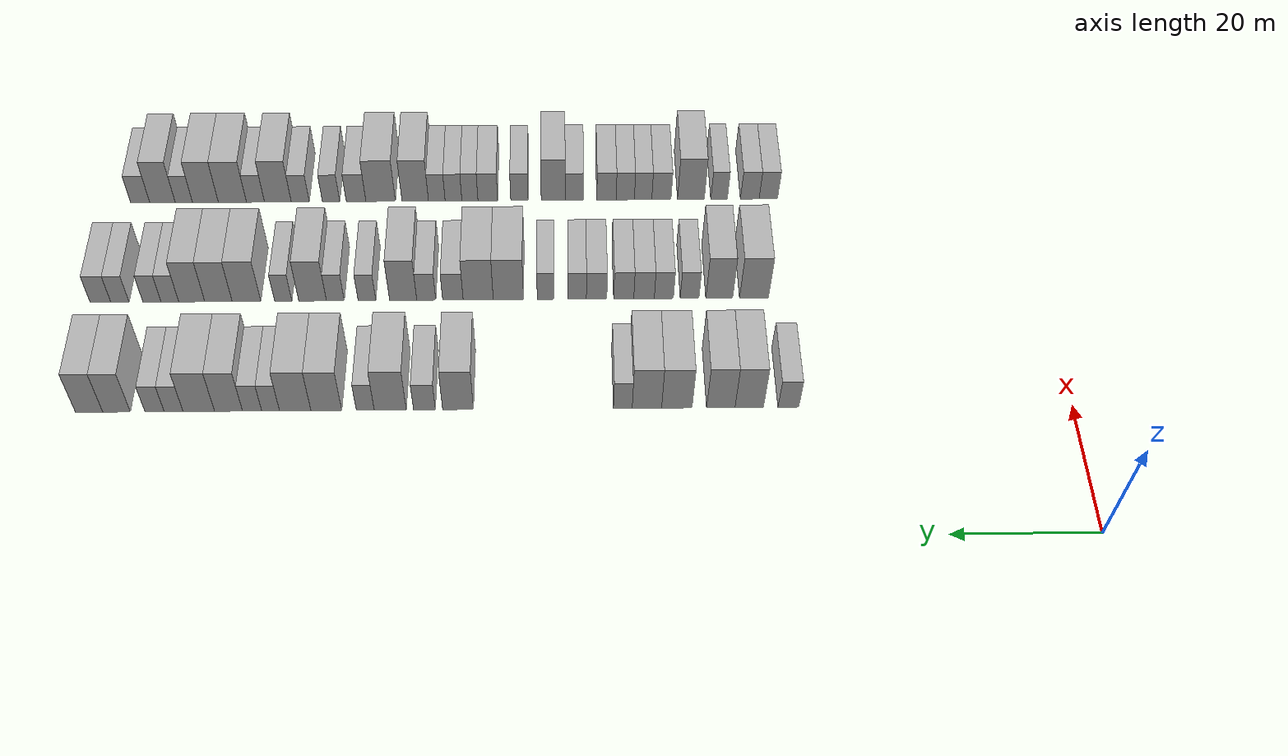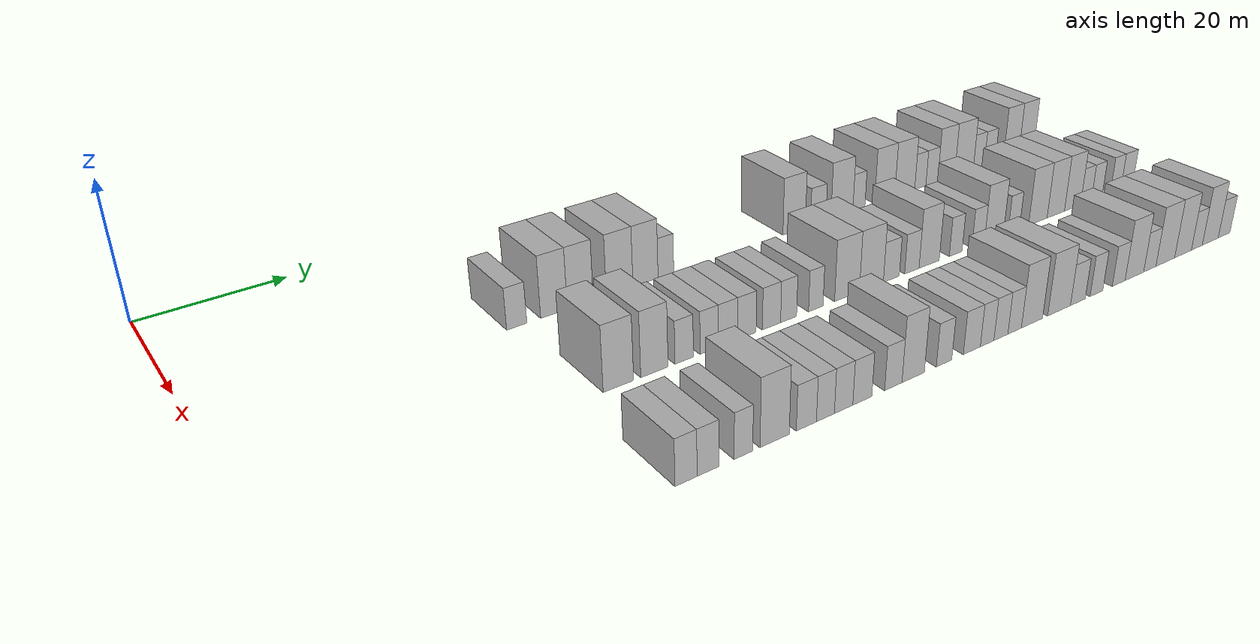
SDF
<sdf version="1.6">
 <world name="default">
  <model name="building_75">
   <static>1</static>
   <pose>25.0000 39.0968 0 0.000000 0.000000 0.000000</pose>
   <link name="link">
    <pose>0 0 3.00 0 0 0</pose>
    <collision name="collision"><geometry><box><size>10.0000 2.8547 6.0000</size></box></geometry></collision>
    <visual name="visual">
     <cast_shadows>0</cast_shadows>
     <geometry><box><size>10.0000 2.8547 6.0000</size></box></geometry>
     <material>
      <script>
       <uri>model://HANNAS_wall/materials/scripts</uri>
       <uri>model://HANNAS_wall/materials/textures</uri>
       <name>vrc/HANNAS_wall</name>
      </script>
     </material>
    </visual>
   </link>
  </model>
  <model name="building_76">
   <static>1</static>
   <pose>25.0000 44.4798 0 0.000000 0.000000 0.000000</pose>
   <link name="link">
    <pose>0 0 4.50 0 0 0</pose>
    <collision name="collision"><geometry><box><size>10.0000 3.9114 9.0000</size></box></geometry></collision>
    <visual name="visual">
     <cast_shadows>0</cast_shadows>
     <geometry><box><size>10.0000 3.9114 9.0000</size></box></geometry>
     <material>
      <script>
       <uri>model://HANNAS_wall/materials/scripts</uri>
       <uri>model://HANNAS_wall/materials/textures</uri>
       <name>vrc/HANNAS_wall</name>
      </script>
     </material>
    </visual>
   </link>
  </model>
  <model name="building_77">
   <static>1</static>
   <pose>25.0000 48.3891 0 0.000000 0.000000 0.000000</pose>
   <link name="link">
    <pose>0 0 4.50 0 0 0</pose>
    <collision name="collision"><geometry><box><size>10.0000 3.9073 9.0000</size></box></geometry></collision>
    <visual name="visual">
     <cast_shadows>0</cast_shadows>
     <geometry><box><size>10.0000 3.9073 9.0000</size></box></geometry>
     <material>
      <script>
       <uri>model://HANNAS_wall/materials/scripts</uri>
       <uri>model://HANNAS_wall/materials/textures</uri>
       <name>vrc/HANNAS_wall</name>
      </script>
     </material>
    </visual>
   </link>
  </model>
  <model name="building_78">
   <static>1</static>
   <pose>25.0000 54.4332 0 0.000000 0.000000 0.000000</pose>
   <link name="link">
    <pose>0 0 4.50 0 0 0</pose>
    <collision name="collision"><geometry><box><size>10.0000 4.1808 9.0000</size></box></geometry></collision>
    <visual name="visual">
     <cast_shadows>0</cast_shadows>
     <geometry><box><size>10.0000 4.1808 9.0000</size></box></geometry>
     <material>
      <script>
       <uri>model://HANNAS_wall/materials/scripts</uri>
       <uri>model://HANNAS_wall/materials/textures</uri>
       <name>vrc/HANNAS_wall</name>
      </script>
     </material>
    </visual>
   </link>
  </model>
  <model name="building_79">
   <static>1</static>
   <pose>25.0000 58.5449 0 0.000000 0.000000 0.000000</pose>
   <link name="link">
    <pose>0 0 4.50 0 0 0</pose>
    <collision name="collision"><geometry><box><size>10.0000 4.0427 9.0000</size></box></geometry></collision>
    <visual name="visual">
     <cast_shadows>0</cast_shadows>
     <geometry><box><size>10.0000 4.0427 9.0000</size></box></geometry>
     <material>
      <script>
       <uri>model://HANNAS_wall/materials/scripts</uri>
       <uri>model://HANNAS_wall/materials/textures</uri>
       <name>vrc/HANNAS_wall</name>
      </script>
     </material>
    </visual>
   </link>
  </model>
  <model name="building_80">
   <static>1</static>
   <pose>25.0000 61.8538 0 0.000000 0.000000 0.000000</pose>
   <link name="link">
    <pose>0 0 3.00 0 0 0</pose>
    <collision name="collision"><geometry><box><size>10.0000 2.5751 6.0000</size></box></geometry></collision>
    <visual name="visual">
     <cast_shadows>0</cast_shadows>
     <geometry><box><size>10.0000 2.5751 6.0000</size></box></geometry>
     <material>
      <script>
       <uri>model://HANNAS_wall/materials/scripts</uri>
       <uri>model://HANNAS_wall/materials/textures</uri>
       <name>vrc/HANNAS_wall</name>
      </script>
     </material>
    </visual>
   </link>
  </model>
  <model name="building_81">
   <static>1</static>
   <pose>25.0000 84.4778 0 0.000000 0.000000 0.000000</pose>
   <link name="link">
    <pose>0 0 4.50 0 0 0</pose>
    <collision name="collision"><geometry><box><size>10.0000 4.2243 9.0000</size></box></geometry></collision>
    <visual name="visual">
     <cast_shadows>0</cast_shadows>
     <geometry><box><size>10.0000 4.2243 9.0000</size></box></geometry>
     <material>
      <script>
       <uri>model://HANNAS_wall/materials/scripts</uri>
       <uri>model://HANNAS_wall/materials/textures</uri>
       <name>vrc/HANNAS_wall</name>
      </script>
     </material>
    </visual>
   </link>
  </model>
  <model name="building_82">
   <static>1</static>
   <pose>25.0000 89.0823 0 0.000000 0.000000 0.000000</pose>
   <link name="link">
    <pose>0 0 3.00 0 0 0</pose>
    <collision name="collision"><geometry><box><size>10.0000 2.9847 6.0000</size></box></geometry></collision>
    <visual name="visual">
     <cast_shadows>0</cast_shadows>
     <geometry><box><size>10.0000 2.9847 6.0000</size></box></geometry>
     <material>
      <script>
       <uri>model://HANNAS_wall/materials/scripts</uri>
       <uri>model://HANNAS_wall/materials/textures</uri>
       <name>vrc/HANNAS_wall</name>
      </script>
     </material>
    </visual>
   </link>
  </model>
  <model name="building_83">
   <static>1</static>
   <pose>25.0000 93.7725 0 0.000000 0.000000 0.000000</pose>
   <link name="link">
    <pose>0 0 4.50 0 0 0</pose>
    <collision name="collision"><geometry><box><size>10.0000 4.3955 9.0000</size></box></geometry></collision>
    <visual name="visual">
     <cast_shadows>0</cast_shadows>
     <geometry><box><size>10.0000 4.3955 9.0000</size></box></geometry>
     <material>
      <script>
       <uri>model://HANNAS_wall/materials/scripts</uri>
       <uri>model://HANNAS_wall/materials/textures</uri>
       <name>vrc/HANNAS_wall</name>
      </script>
     </material>
    </visual>
   </link>
  </model>
  <model name="building_84">
   <static>1</static>
   <pose>25.0000 97.1975 0 0.000000 0.000000 0.000000</pose>
   <link name="link">
    <pose>0 0 3.00 0 0 0</pose>
    <collision name="collision"><geometry><box><size>10.0000 2.4546 6.0000</size></box></geometry></collision>
    <visual name="visual">
     <cast_shadows>0</cast_shadows>
     <geometry><box><size>10.0000 2.4546 6.0000</size></box></geometry>
     <material>
      <script>
       <uri>model://HANNAS_wall/materials/scripts</uri>
       <uri>model://HANNAS_wall/materials/textures</uri>
       <name>vrc/HANNAS_wall</name>
      </script>
     </material>
    </visual>
   </link>
  </model>
  <model name="building_85">
   <static>1</static>
   <pose>25.0000 102.5396 0 0.000000 0.000000 0.000000</pose>
   <link name="link">
    <pose>0 0 4.50 0 0 0</pose>
    <collision name="collision"><geometry><box><size>10.0000 4.2296 9.0000</size></box></geometry></collision>
    <visual name="visual">
     <cast_shadows>0</cast_shadows>
     <geometry><box><size>10.0000 4.2296 9.0000</size></box></geometry>
     <material>
      <script>
       <uri>model://HANNAS_wall/materials/scripts</uri>
       <uri>model://HANNAS_wall/materials/textures</uri>
       <name>vrc/HANNAS_wall</name>
      </script>
     </material>
    </visual>
   </link>
  </model>
  <model name="building_86">
   <static>1</static>
   <pose>25.0000 106.8066 0 0.000000 0.000000 0.000000</pose>
   <link name="link">
    <pose>0 0 4.50 0 0 0</pose>
    <collision name="collision"><geometry><box><size>10.0000 4.3044 9.0000</size></box></geometry></collision>
    <visual name="visual">
     <cast_shadows>0</cast_shadows>
     <geometry><box><size>10.0000 4.3044 9.0000</size></box></geometry>
     <material>
      <script>
       <uri>model://HANNAS_wall/materials/scripts</uri>
       <uri>model://HANNAS_wall/materials/textures</uri>
       <name>vrc/HANNAS_wall</name>
      </script>
     </material>
    </visual>
   </link>
  </model>
  <model name="building_87">
   <static>1</static>
   <pose>25.0000 110.1790 0 0.000000 0.000000 0.000000</pose>
   <link name="link">
    <pose>0 0 3.00 0 0 0</pose>
    <collision name="collision"><geometry><box><size>10.0000 2.4404 6.0000</size></box></geometry></collision>
    <visual name="visual">
     <cast_shadows>0</cast_shadows>
     <geometry><box><size>10.0000 2.4404 6.0000</size></box></geometry>
     <material>
      <script>
       <uri>model://HANNAS_wall/materials/scripts</uri>
       <uri>model://HANNAS_wall/materials/textures</uri>
       <name>vrc/HANNAS_wall</name>
      </script>
     </material>
    </visual>
   </link>
  </model>
  <model name="building_88">
   <static>1</static>
   <pose>25.0000 112.7110 0 0.000000 0.000000 0.000000</pose>
   <link name="link">
    <pose>0 0 3.00 0 0 0</pose>
    <collision name="collision"><geometry><box><size>10.0000 2.6236 6.0000</size></box></geometry></collision>
    <visual name="visual">
     <cast_shadows>0</cast_shadows>
     <geometry><box><size>10.0000 2.6236 6.0000</size></box></geometry>
     <material>
      <script>
       <uri>model://HANNAS_wall/materials/scripts</uri>
       <uri>model://HANNAS_wall/materials/textures</uri>
       <name>vrc/HANNAS_wall</name>
      </script>
     </material>
    </visual>
   </link>
  </model>
  <model name="building_89">
   <static>1</static>
   <pose>25.0000 115.9426 0 0.000000 0.000000 0.000000</pose>
   <link name="link">
    <pose>0 0 4.50 0 0 0</pose>
    <collision name="collision"><geometry><box><size>10.0000 3.8397 9.0000</size></box></geometry></collision>
    <visual name="visual">
     <cast_shadows>0</cast_shadows>
     <geometry><box><size>10.0000 3.8397 9.0000</size></box></geometry>
     <material>
      <script>
       <uri>model://HANNAS_wall/materials/scripts</uri>
       <uri>model://HANNAS_wall/materials/textures</uri>
       <name>vrc/HANNAS_wall</name>
      </script>
     </material>
    </visual>
   </link>
  </model>
  <model name="building_90">
   <static>1</static>
   <pose>25.0000 120.0203 0 0.000000 0.000000 0.000000</pose>
   <link name="link">
    <pose>0 0 4.50 0 0 0</pose>
    <collision name="collision"><geometry><box><size>10.0000 4.3157 9.0000</size></box></geometry></collision>
    <visual name="visual">
     <cast_shadows>0</cast_shadows>
     <geometry><box><size>10.0000 4.3157 9.0000</size></box></geometry>
     <material>
      <script>
       <uri>model://HANNAS_wall/materials/scripts</uri>
       <uri>model://HANNAS_wall/materials/textures</uri>
       <name>vrc/HANNAS_wall</name>
      </script>
     </material>
    </visual>
   </link>
  </model>
  <model name="building_91">
   <static>1</static>
   <pose>25.0000 123.4701 0 0.000000 0.000000 0.000000</pose>
   <link name="link">
    <pose>0 0 3.00 0 0 0</pose>
    <collision name="collision"><geometry><box><size>10.0000 2.5840 6.0000</size></box></geometry></collision>
    <visual name="visual">
     <cast_shadows>0</cast_shadows>
     <geometry><box><size>10.0000 2.5840 6.0000</size></box></geometry>
     <material>
      <script>
       <uri>model://HANNAS_wall/materials/scripts</uri>
       <uri>model://HANNAS_wall/materials/textures</uri>
       <name>vrc/HANNAS_wall</name>
      </script>
     </material>
    </visual>
   </link>
  </model>
  <model name="building_92">
   <static>1</static>
   <pose>25.0000 126.0767 0 0.000000 0.000000 0.000000</pose>
   <link name="link">
    <pose>0 0 3.00 0 0 0</pose>
    <collision name="collision"><geometry><box><size>10.0000 2.6291 6.0000</size></box></geometry></collision>
    <visual name="visual">
     <cast_shadows>0</cast_shadows>
     <geometry><box><size>10.0000 2.6291 6.0000</size></box></geometry>
     <material>
      <script>
       <uri>model://HANNAS_wall/materials/scripts</uri>
       <uri>model://HANNAS_wall/materials/textures</uri>
       <name>vrc/HANNAS_wall</name>
      </script>
     </material>
    </visual>
   </link>
  </model>
  <model name="building_93">
   <static>1</static>
   <pose>25.0000 131.2825 0 0.000000 0.000000 0.000000</pose>
   <link name="link">
    <pose>0 0 4.50 0 0 0</pose>
    <collision name="collision"><geometry><box><size>10.0000 3.7823 9.0000</size></box></geometry></collision>
    <visual name="visual">
     <cast_shadows>0</cast_shadows>
     <geometry><box><size>10.0000 3.7823 9.0000</size></box></geometry>
     <material>
      <script>
       <uri>model://HANNAS_wall/materials/scripts</uri>
       <uri>model://HANNAS_wall/materials/textures</uri>
       <name>vrc/HANNAS_wall</name>
      </script>
     </material>
    </visual>
   </link>
  </model>
  <model name="building_94">
   <static>1</static>
   <pose>25.0000 135.0391 0 0.000000 0.000000 0.000000</pose>
   <link name="link">
    <pose>0 0 4.50 0 0 0</pose>
    <collision name="collision"><geometry><box><size>10.0000 3.7309 9.0000</size></box></geometry></collision>
    <visual name="visual">
     <cast_shadows>0</cast_shadows>
     <geometry><box><size>10.0000 3.7309 9.0000</size></box></geometry>
     <material>
      <script>
       <uri>model://HANNAS_wall/materials/scripts</uri>
       <uri>model://HANNAS_wall/materials/textures</uri>
       <name>vrc/HANNAS_wall</name>
      </script>
     </material>
    </visual>
   </link>
  </model>
  <model name="building_192">
   <static>1</static>
   <pose>44.0000 42.3179 0 0.000000 0.000000 0.000000</pose>
   <link name="link">
    <pose>0 0 4.50 0 0 0</pose>
    <collision name="collision"><geometry><box><size>10.0000 4.1837 9.0000</size></box></geometry></collision>
    <visual name="visual">
     <cast_shadows>0</cast_shadows>
     <geometry><box><size>10.0000 4.1837 9.0000</size></box></geometry>
     <material>
      <script>
       <uri>model://HANNAS_wall/materials/scripts</uri>
       <uri>model://HANNAS_wall/materials/textures</uri>
       <name>vrc/HANNAS_wall</name>
      </script>
     </material>
    </visual>
   </link>
  </model>
  <model name="building_193">
   <static>1</static>
   <pose>44.0000 47.3518 0 0.000000 0.000000 0.000000</pose>
   <link name="link">
    <pose>0 0 4.50 0 0 0</pose>
    <collision name="collision"><geometry><box><size>10.0000 3.8842 9.0000</size></box></geometry></collision>
    <visual name="visual">
     <cast_shadows>0</cast_shadows>
     <geometry><box><size>10.0000 3.8842 9.0000</size></box></geometry>
     <material>
      <script>
       <uri>model://HANNAS_wall/materials/scripts</uri>
       <uri>model://HANNAS_wall/materials/textures</uri>
       <name>vrc/HANNAS_wall</name>
      </script>
     </material>
    </visual>
   </link>
  </model>
  <model name="building_194">
   <static>1</static>
   <pose>44.0000 51.6455 0 0.000000 0.000000 0.000000</pose>
   <link name="link">
    <pose>0 0 3.00 0 0 0</pose>
    <collision name="collision"><geometry><box><size>10.0000 2.7030 6.0000</size></box></geometry></collision>
    <visual name="visual">
     <cast_shadows>0</cast_shadows>
     <geometry><box><size>10.0000 2.7030 6.0000</size></box></geometry>
     <material>
      <script>
       <uri>model://HANNAS_wall/materials/scripts</uri>
       <uri>model://HANNAS_wall/materials/textures</uri>
       <name>vrc/HANNAS_wall</name>
      </script>
     </material>
    </visual>
   </link>
  </model>
  <model name="building_195">
   <static>1</static>
   <pose>44.0000 55.3743 0 0.000000 0.000000 0.000000</pose>
   <link name="link">
    <pose>0 0 3.00 0 0 0</pose>
    <collision name="collision"><geometry><box><size>10.0000 2.7546 6.0000</size></box></geometry></collision>
    <visual name="visual">
     <cast_shadows>0</cast_shadows>
     <geometry><box><size>10.0000 2.7546 6.0000</size></box></geometry>
     <material>
      <script>
       <uri>model://HANNAS_wall/materials/scripts</uri>
       <uri>model://HANNAS_wall/materials/textures</uri>
       <name>vrc/HANNAS_wall</name>
      </script>
     </material>
    </visual>
   </link>
  </model>
  <model name="building_196">
   <static>1</static>
   <pose>44.0000 58.2338 0 0.000000 0.000000 0.000000</pose>
   <link name="link">
    <pose>0 0 3.00 0 0 0</pose>
    <collision name="collision"><geometry><box><size>10.0000 2.9645 6.0000</size></box></geometry></collision>
    <visual name="visual">
     <cast_shadows>0</cast_shadows>
     <geometry><box><size>10.0000 2.9645 6.0000</size></box></geometry>
     <material>
      <script>
       <uri>model://HANNAS_wall/materials/scripts</uri>
       <uri>model://HANNAS_wall/materials/textures</uri>
       <name>vrc/HANNAS_wall</name>
      </script>
     </material>
    </visual>
   </link>
  </model>
  <model name="building_197">
   <static>1</static>
   <pose>44.0000 61.1709 0 0.000000 0.000000 0.000000</pose>
   <link name="link">
    <pose>0 0 3.00 0 0 0</pose>
    <collision name="collision"><geometry><box><size>10.0000 2.9097 6.0000</size></box></geometry></collision>
    <visual name="visual">
     <cast_shadows>0</cast_shadows>
     <geometry><box><size>10.0000 2.9097 6.0000</size></box></geometry>
     <material>
      <script>
       <uri>model://HANNAS_wall/materials/scripts</uri>
       <uri>model://HANNAS_wall/materials/textures</uri>
       <name>vrc/HANNAS_wall</name>
      </script>
     </material>
    </visual>
   </link>
  </model>
  <model name="building_198">
   <static>1</static>
   <pose>44.0000 65.1029 0 0.000000 0.000000 0.000000</pose>
   <link name="link">
    <pose>0 0 3.00 0 0 0</pose>
    <collision name="collision"><geometry><box><size>10.0000 2.9542 6.0000</size></box></geometry></collision>
    <visual name="visual">
     <cast_shadows>0</cast_shadows>
     <geometry><box><size>10.0000 2.9542 6.0000</size></box></geometry>
     <material>
      <script>
       <uri>model://HANNAS_wall/materials/scripts</uri>
       <uri>model://HANNAS_wall/materials/textures</uri>
       <name>vrc/HANNAS_wall</name>
      </script>
     </material>
    </visual>
   </link>
  </model>
  <model name="building_199">
   <static>1</static>
   <pose>44.0000 67.8954 0 0.000000 0.000000 0.000000</pose>
   <link name="link">
    <pose>0 0 3.00 0 0 0</pose>
    <collision name="collision"><geometry><box><size>10.0000 2.6307 6.0000</size></box></geometry></collision>
    <visual name="visual">
     <cast_shadows>0</cast_shadows>
     <geometry><box><size>10.0000 2.6307 6.0000</size></box></geometry>
     <material>
      <script>
       <uri>model://HANNAS_wall/materials/scripts</uri>
       <uri>model://HANNAS_wall/materials/textures</uri>
       <name>vrc/HANNAS_wall</name>
      </script>
     </material>
    </visual>
   </link>
  </model>
  <model name="building_200">
   <static>1</static>
   <pose>44.0000 72.4391 0 0.000000 0.000000 0.000000</pose>
   <link name="link">
    <pose>0 0 3.00 0 0 0</pose>
    <collision name="collision"><geometry><box><size>10.0000 2.4569 6.0000</size></box></geometry></collision>
    <visual name="visual">
     <cast_shadows>0</cast_shadows>
     <geometry><box><size>10.0000 2.4569 6.0000</size></box></geometry>
     <material>
      <script>
       <uri>model://HANNAS_wall/materials/scripts</uri>
       <uri>model://HANNAS_wall/materials/textures</uri>
       <name>vrc/HANNAS_wall</name>
      </script>
     </material>
    </visual>
   </link>
  </model>
  <model name="building_201">
   <static>1</static>
   <pose>44.0000 77.8555 0 0.000000 0.000000 0.000000</pose>
   <link name="link">
    <pose>0 0 4.50 0 0 0</pose>
    <collision name="collision"><geometry><box><size>10.0000 4.3758 9.0000</size></box></geometry></collision>
    <visual name="visual">
     <cast_shadows>0</cast_shadows>
     <geometry><box><size>10.0000 4.3758 9.0000</size></box></geometry>
     <material>
      <script>
       <uri>model://HANNAS_wall/materials/scripts</uri>
       <uri>model://HANNAS_wall/materials/textures</uri>
       <name>vrc/HANNAS_wall</name>
      </script>
     </material>
    </visual>
   </link>
  </model>
  <model name="building_202">
   <static>1</static>
   <pose>44.0000 82.2166 0 0.000000 0.000000 0.000000</pose>
   <link name="link">
    <pose>0 0 4.50 0 0 0</pose>
    <collision name="collision"><geometry><box><size>10.0000 4.3466 9.0000</size></box></geometry></collision>
    <visual name="visual">
     <cast_shadows>0</cast_shadows>
     <geometry><box><size>10.0000 4.3466 9.0000</size></box></geometry>
     <material>
      <script>
       <uri>model://HANNAS_wall/materials/scripts</uri>
       <uri>model://HANNAS_wall/materials/textures</uri>
       <name>vrc/HANNAS_wall</name>
      </script>
     </material>
    </visual>
   </link>
  </model>
  <model name="building_203">
   <static>1</static>
   <pose>44.0000 85.8664 0 0.000000 0.000000 0.000000</pose>
   <link name="link">
    <pose>0 0 3.00 0 0 0</pose>
    <collision name="collision"><geometry><box><size>10.0000 2.9529 6.0000</size></box></geometry></collision>
    <visual name="visual">
     <cast_shadows>0</cast_shadows>
     <geometry><box><size>10.0000 2.9529 6.0000</size></box></geometry>
     <material>
      <script>
       <uri>model://HANNAS_wall/materials/scripts</uri>
       <uri>model://HANNAS_wall/materials/textures</uri>
       <name>vrc/HANNAS_wall</name>
      </script>
     </material>
    </visual>
   </link>
  </model>
  <model name="building_204">
   <static>1</static>
   <pose>44.0000 89.7138 0 0.000000 0.000000 0.000000</pose>
   <link name="link">
    <pose>0 0 3.00 0 0 0</pose>
    <collision name="collision"><geometry><box><size>10.0000 2.7420 6.0000</size></box></geometry></collision>
    <visual name="visual">
     <cast_shadows>0</cast_shadows>
     <geometry><box><size>10.0000 2.7420 6.0000</size></box></geometry>
     <material>
      <script>
       <uri>model://HANNAS_wall/materials/scripts</uri>
       <uri>model://HANNAS_wall/materials/textures</uri>
       <name>vrc/HANNAS_wall</name>
      </script>
     </material>
    </visual>
   </link>
  </model>
  <model name="building_205">
   <static>1</static>
   <pose>44.0000 93.0427 0 0.000000 0.000000 0.000000</pose>
   <link name="link">
    <pose>0 0 4.50 0 0 0</pose>
    <collision name="collision"><geometry><box><size>10.0000 3.9157 9.0000</size></box></geometry></collision>
    <visual name="visual">
     <cast_shadows>0</cast_shadows>
     <geometry><box><size>10.0000 3.9157 9.0000</size></box></geometry>
     <material>
      <script>
       <uri>model://HANNAS_wall/materials/scripts</uri>
       <uri>model://HANNAS_wall/materials/textures</uri>
       <name>vrc/HANNAS_wall</name>
      </script>
     </material>
    </visual>
   </link>
  </model>
  <model name="building_206">
   <static>1</static>
   <pose>44.0000 98.2769 0 0.000000 0.000000 0.000000</pose>
   <link name="link">
    <pose>0 0 3.00 0 0 0</pose>
    <collision name="collision"><geometry><box><size>10.0000 2.5526 6.0000</size></box></geometry></collision>
    <visual name="visual">
     <cast_shadows>0</cast_shadows>
     <geometry><box><size>10.0000 2.5526 6.0000</size></box></geometry>
     <material>
      <script>
       <uri>model://HANNAS_wall/materials/scripts</uri>
       <uri>model://HANNAS_wall/materials/textures</uri>
       <name>vrc/HANNAS_wall</name>
      </script>
     </material>
    </visual>
   </link>
  </model>
  <model name="building_207">
   <static>1</static>
   <pose>44.0000 102.8432 0 0.000000 0.000000 0.000000</pose>
   <link name="link">
    <pose>0 0 3.00 0 0 0</pose>
    <collision name="collision"><geometry><box><size>10.0000 2.5802 6.0000</size></box></geometry></collision>
    <visual name="visual">
     <cast_shadows>0</cast_shadows>
     <geometry><box><size>10.0000 2.5802 6.0000</size></box></geometry>
     <material>
      <script>
       <uri>model://HANNAS_wall/materials/scripts</uri>
       <uri>model://HANNAS_wall/materials/textures</uri>
       <name>vrc/HANNAS_wall</name>
      </script>
     </material>
    </visual>
   </link>
  </model>
  <model name="building_208">
   <static>1</static>
   <pose>44.0000 106.1277 0 0.000000 0.000000 0.000000</pose>
   <link name="link">
    <pose>0 0 4.50 0 0 0</pose>
    <collision name="collision"><geometry><box><size>10.0000 3.9887 9.0000</size></box></geometry></collision>
    <visual name="visual">
     <cast_shadows>0</cast_shadows>
     <geometry><box><size>10.0000 3.9887 9.0000</size></box></geometry>
     <material>
      <script>
       <uri>model://HANNAS_wall/materials/scripts</uri>
       <uri>model://HANNAS_wall/materials/textures</uri>
       <name>vrc/HANNAS_wall</name>
      </script>
     </material>
    </visual>
   </link>
  </model>
  <model name="building_209">
   <static>1</static>
   <pose>44.0000 110.3621 0 0.000000 0.000000 0.000000</pose>
   <link name="link">
    <pose>0 0 3.00 0 0 0</pose>
    <collision name="collision"><geometry><box><size>10.0000 2.4802 6.0000</size></box></geometry></collision>
    <visual name="visual">
     <cast_shadows>0</cast_shadows>
     <geometry><box><size>10.0000 2.4802 6.0000</size></box></geometry>
     <material>
      <script>
       <uri>model://HANNAS_wall/materials/scripts</uri>
       <uri>model://HANNAS_wall/materials/textures</uri>
       <name>vrc/HANNAS_wall</name>
      </script>
     </material>
    </visual>
   </link>
  </model>
  <model name="building_210">
   <static>1</static>
   <pose>44.0000 115.6674 0 0.000000 0.000000 0.000000</pose>
   <link name="link">
    <pose>0 0 4.50 0 0 0</pose>
    <collision name="collision"><geometry><box><size>10.0000 4.1304 9.0000</size></box></geometry></collision>
    <visual name="visual">
     <cast_shadows>0</cast_shadows>
     <geometry><box><size>10.0000 4.1304 9.0000</size></box></geometry>
     <material>
      <script>
       <uri>model://HANNAS_wall/materials/scripts</uri>
       <uri>model://HANNAS_wall/materials/textures</uri>
       <name>vrc/HANNAS_wall</name>
      </script>
     </material>
    </visual>
   </link>
  </model>
  <model name="building_211">
   <static>1</static>
   <pose>44.0000 119.7074 0 0.000000 0.000000 0.000000</pose>
   <link name="link">
    <pose>0 0 4.50 0 0 0</pose>
    <collision name="collision"><geometry><box><size>10.0000 3.9498 9.0000</size></box></geometry></collision>
    <visual name="visual">
     <cast_shadows>0</cast_shadows>
     <geometry><box><size>10.0000 3.9498 9.0000</size></box></geometry>
     <material>
      <script>
       <uri>model://HANNAS_wall/materials/scripts</uri>
       <uri>model://HANNAS_wall/materials/textures</uri>
       <name>vrc/HANNAS_wall</name>
      </script>
     </material>
    </visual>
   </link>
  </model>
  <model name="building_212">
   <static>1</static>
   <pose>44.0000 123.5624 0 0.000000 0.000000 0.000000</pose>
   <link name="link">
    <pose>0 0 4.50 0 0 0</pose>
    <collision name="collision"><geometry><box><size>10.0000 3.7601 9.0000</size></box></geometry></collision>
    <visual name="visual">
     <cast_shadows>0</cast_shadows>
     <geometry><box><size>10.0000 3.7601 9.0000</size></box></geometry>
     <material>
      <script>
       <uri>model://HANNAS_wall/materials/scripts</uri>
       <uri>model://HANNAS_wall/materials/textures</uri>
       <name>vrc/HANNAS_wall</name>
      </script>
     </material>
    </visual>
   </link>
  </model>
  <model name="building_213">
   <static>1</static>
   <pose>44.0000 126.7254 0 0.000000 0.000000 0.000000</pose>
   <link name="link">
    <pose>0 0 3.00 0 0 0</pose>
    <collision name="collision"><geometry><box><size>10.0000 2.5659 6.0000</size></box></geometry></collision>
    <visual name="visual">
     <cast_shadows>0</cast_shadows>
     <geometry><box><size>10.0000 2.5659 6.0000</size></box></geometry>
     <material>
      <script>
       <uri>model://HANNAS_wall/materials/scripts</uri>
       <uri>model://HANNAS_wall/materials/textures</uri>
       <name>vrc/HANNAS_wall</name>
      </script>
     </material>
    </visual>
   </link>
  </model>
  <model name="building_214">
   <static>1</static>
   <pose>44.0000 129.3062 0 0.000000 0.000000 0.000000</pose>
   <link name="link">
    <pose>0 0 3.00 0 0 0</pose>
    <collision name="collision"><geometry><box><size>10.0000 2.5957 6.0000</size></box></geometry></collision>
    <visual name="visual">
     <cast_shadows>0</cast_shadows>
     <geometry><box><size>10.0000 2.5957 6.0000</size></box></geometry>
     <material>
      <script>
       <uri>model://HANNAS_wall/materials/scripts</uri>
       <uri>model://HANNAS_wall/materials/textures</uri>
       <name>vrc/HANNAS_wall</name>
      </script>
     </material>
    </visual>
   </link>
  </model>
  <model name="building_215">
   <static>1</static>
   <pose>44.0000 133.9205 0 0.000000 0.000000 0.000000</pose>
   <link name="link">
    <pose>0 0 3.00 0 0 0</pose>
    <collision name="collision"><geometry><box><size>10.0000 2.6330 6.0000</size></box></geometry></collision>
    <visual name="visual">
     <cast_shadows>0</cast_shadows>
     <geometry><box><size>10.0000 2.6330 6.0000</size></box></geometry>
     <material>
      <script>
       <uri>model://HANNAS_wall/materials/scripts</uri>
       <uri>model://HANNAS_wall/materials/textures</uri>
       <name>vrc/HANNAS_wall</name>
      </script>
     </material>
    </visual>
   </link>
  </model>
  <model name="building_216">
   <static>1</static>
   <pose>44.0000 136.7255 0 0.000000 0.000000 0.000000</pose>
   <link name="link">
    <pose>0 0 3.00 0 0 0</pose>
    <collision name="collision"><geometry><box><size>10.0000 2.9769 6.0000</size></box></geometry></collision>
    <visual name="visual">
     <cast_shadows>0</cast_shadows>
     <geometry><box><size>10.0000 2.9769 6.0000</size></box></geometry>
     <material>
      <script>
       <uri>model://HANNAS_wall/materials/scripts</uri>
       <uri>model://HANNAS_wall/materials/textures</uri>
       <name>vrc/HANNAS_wall</name>
      </script>
     </material>
    </visual>
   </link>
  </model>
  <model name="building_313">
   <static>1</static>
   <pose>63.0000 38.6428 0 0.000000 0.000000 0.000000</pose>
   <link name="link">
    <pose>0 0 3.00 0 0 0</pose>
    <collision name="collision"><geometry><box><size>10.0000 2.7990 6.0000</size></box></geometry></collision>
    <visual name="visual">
     <cast_shadows>0</cast_shadows>
     <geometry><box><size>10.0000 2.7990 6.0000</size></box></geometry>
     <material>
      <script>
       <uri>model://HANNAS_wall/materials/scripts</uri>
       <uri>model://HANNAS_wall/materials/textures</uri>
       <name>vrc/HANNAS_wall</name>
      </script>
     </material>
    </visual>
   </link>
  </model>
  <model name="building_314">
   <static>1</static>
   <pose>63.0000 41.4582 0 0.000000 0.000000 0.000000</pose>
   <link name="link">
    <pose>0 0 3.00 0 0 0</pose>
    <collision name="collision"><geometry><box><size>10.0000 2.8318 6.0000</size></box></geometry></collision>
    <visual name="visual">
     <cast_shadows>0</cast_shadows>
     <geometry><box><size>10.0000 2.8318 6.0000</size></box></geometry>
     <material>
      <script>
       <uri>model://HANNAS_wall/materials/scripts</uri>
       <uri>model://HANNAS_wall/materials/textures</uri>
       <name>vrc/HANNAS_wall</name>
      </script>
     </material>
    </visual>
   </link>
  </model>
  <model name="building_315">
   <static>1</static>
   <pose>63.0000 46.1259 0 0.000000 0.000000 0.000000</pose>
   <link name="link">
    <pose>0 0 3.00 0 0 0</pose>
    <collision name="collision"><geometry><box><size>10.0000 2.5035 6.0000</size></box></geometry></collision>
    <visual name="visual">
     <cast_shadows>0</cast_shadows>
     <geometry><box><size>10.0000 2.5035 6.0000</size></box></geometry>
     <material>
      <script>
       <uri>model://HANNAS_wall/materials/scripts</uri>
       <uri>model://HANNAS_wall/materials/textures</uri>
       <name>vrc/HANNAS_wall</name>
      </script>
     </material>
    </visual>
   </link>
  </model>
  <model name="building_316">
   <static>1</static>
   <pose>63.0000 50.4107 0 0.000000 0.000000 0.000000</pose>
   <link name="link">
    <pose>0 0 4.50 0 0 0</pose>
    <collision name="collision"><geometry><box><size>10.0000 4.0661 9.0000</size></box></geometry></collision>
    <visual name="visual">
     <cast_shadows>0</cast_shadows>
     <geometry><box><size>10.0000 4.0661 9.0000</size></box></geometry>
     <material>
      <script>
       <uri>model://HANNAS_wall/materials/scripts</uri>
       <uri>model://HANNAS_wall/materials/textures</uri>
       <name>vrc/HANNAS_wall</name>
      </script>
     </material>
    </visual>
   </link>
  </model>
  <model name="building_317">
   <static>1</static>
   <pose>63.0000 54.8955 0 0.000000 0.000000 0.000000</pose>
   <link name="link">
    <pose>0 0 3.00 0 0 0</pose>
    <collision name="collision"><geometry><box><size>10.0000 2.9034 6.0000</size></box></geometry></collision>
    <visual name="visual">
     <cast_shadows>0</cast_shadows>
     <geometry><box><size>10.0000 2.9034 6.0000</size></box></geometry>
     <material>
      <script>
       <uri>model://HANNAS_wall/materials/scripts</uri>
       <uri>model://HANNAS_wall/materials/textures</uri>
       <name>vrc/HANNAS_wall</name>
      </script>
     </material>
    </visual>
   </link>
  </model>
  <model name="building_318">
   <static>1</static>
   <pose>63.0000 57.6741 0 0.000000 0.000000 0.000000</pose>
   <link name="link">
    <pose>0 0 3.00 0 0 0</pose>
    <collision name="collision"><geometry><box><size>10.0000 2.6539 6.0000</size></box></geometry></collision>
    <visual name="visual">
     <cast_shadows>0</cast_shadows>
     <geometry><box><size>10.0000 2.6539 6.0000</size></box></geometry>
     <material>
      <script>
       <uri>model://HANNAS_wall/materials/scripts</uri>
       <uri>model://HANNAS_wall/materials/textures</uri>
       <name>vrc/HANNAS_wall</name>
      </script>
     </material>
    </visual>
   </link>
  </model>
  <model name="building_319">
   <static>1</static>
   <pose>63.0000 60.3888 0 0.000000 0.000000 0.000000</pose>
   <link name="link">
    <pose>0 0 3.00 0 0 0</pose>
    <collision name="collision"><geometry><box><size>10.0000 2.7754 6.0000</size></box></geometry></collision>
    <visual name="visual">
     <cast_shadows>0</cast_shadows>
     <geometry><box><size>10.0000 2.7754 6.0000</size></box></geometry>
     <material>
      <script>
       <uri>model://HANNAS_wall/materials/scripts</uri>
       <uri>model://HANNAS_wall/materials/textures</uri>
       <name>vrc/HANNAS_wall</name>
      </script>
     </material>
    </visual>
   </link>
  </model>
  <model name="building_320">
   <static>1</static>
   <pose>63.0000 63.2422 0 0.000000 0.000000 0.000000</pose>
   <link name="link">
    <pose>0 0 3.00 0 0 0</pose>
    <collision name="collision"><geometry><box><size>10.0000 2.9315 6.0000</size></box></geometry></collision>
    <visual name="visual">
     <cast_shadows>0</cast_shadows>
     <geometry><box><size>10.0000 2.9315 6.0000</size></box></geometry>
     <material>
      <script>
       <uri>model://HANNAS_wall/materials/scripts</uri>
       <uri>model://HANNAS_wall/materials/textures</uri>
       <name>vrc/HANNAS_wall</name>
      </script>
     </material>
    </visual>
   </link>
  </model>
  <model name="building_321">
   <static>1</static>
   <pose>63.0000 68.0961 0 0.000000 0.000000 0.000000</pose>
   <link name="link">
    <pose>0 0 3.00 0 0 0</pose>
    <collision name="collision"><geometry><box><size>10.0000 2.7762 6.0000</size></box></geometry></collision>
    <visual name="visual">
     <cast_shadows>0</cast_shadows>
     <geometry><box><size>10.0000 2.7762 6.0000</size></box></geometry>
     <material>
      <script>
       <uri>model://HANNAS_wall/materials/scripts</uri>
       <uri>model://HANNAS_wall/materials/textures</uri>
       <name>vrc/HANNAS_wall</name>
      </script>
     </material>
    </visual>
   </link>
  </model>
  <model name="building_322">
   <static>1</static>
   <pose>63.0000 71.3118 0 0.000000 0.000000 0.000000</pose>
   <link name="link">
    <pose>0 0 4.50 0 0 0</pose>
    <collision name="collision"><geometry><box><size>10.0000 3.6554 9.0000</size></box></geometry></collision>
    <visual name="visual">
     <cast_shadows>0</cast_shadows>
     <geometry><box><size>10.0000 3.6554 9.0000</size></box></geometry>
     <material>
      <script>
       <uri>model://HANNAS_wall/materials/scripts</uri>
       <uri>model://HANNAS_wall/materials/textures</uri>
       <name>vrc/HANNAS_wall</name>
      </script>
     </material>
    </visual>
   </link>
  </model>
  <model name="building_323">
   <static>1</static>
   <pose>63.0000 76.4514 0 0.000000 0.000000 0.000000</pose>
   <link name="link">
    <pose>0 0 3.00 0 0 0</pose>
    <collision name="collision"><geometry><box><size>10.0000 2.6238 6.0000</size></box></geometry></collision>
    <visual name="visual">
     <cast_shadows>0</cast_shadows>
     <geometry><box><size>10.0000 2.6238 6.0000</size></box></geometry>
     <material>
      <script>
       <uri>model://HANNAS_wall/materials/scripts</uri>
       <uri>model://HANNAS_wall/materials/textures</uri>
       <name>vrc/HANNAS_wall</name>
      </script>
     </material>
    </visual>
   </link>
  </model>
  <model name="building_324">
   <static>1</static>
   <pose>63.0000 81.2562 0 0.000000 0.000000 0.000000</pose>
   <link name="link">
    <pose>0 0 3.00 0 0 0</pose>
    <collision name="collision"><geometry><box><size>10.0000 2.9858 6.0000</size></box></geometry></collision>
    <visual name="visual">
     <cast_shadows>0</cast_shadows>
     <geometry><box><size>10.0000 2.9858 6.0000</size></box></geometry>
     <material>
      <script>
       <uri>model://HANNAS_wall/materials/scripts</uri>
       <uri>model://HANNAS_wall/materials/textures</uri>
       <name>vrc/HANNAS_wall</name>
      </script>
     </material>
    </visual>
   </link>
  </model>
  <model name="building_325">
   <static>1</static>
   <pose>63.0000 83.9680 0 0.000000 0.000000 0.000000</pose>
   <link name="link">
    <pose>0 0 3.00 0 0 0</pose>
    <collision name="collision"><geometry><box><size>10.0000 2.4378 6.0000</size></box></geometry></collision>
    <visual name="visual">
     <cast_shadows>0</cast_shadows>
     <geometry><box><size>10.0000 2.4378 6.0000</size></box></geometry>
     <material>
      <script>
       <uri>model://HANNAS_wall/materials/scripts</uri>
       <uri>model://HANNAS_wall/materials/textures</uri>
       <name>vrc/HANNAS_wall</name>
      </script>
     </material>
    </visual>
   </link>
  </model>
  <model name="building_326">
   <static>1</static>
   <pose>63.0000 86.4575 0 0.000000 0.000000 0.000000</pose>
   <link name="link">
    <pose>0 0 3.00 0 0 0</pose>
    <collision name="collision"><geometry><box><size>10.0000 2.5412 6.0000</size></box></geometry></collision>
    <visual name="visual">
     <cast_shadows>0</cast_shadows>
     <geometry><box><size>10.0000 2.5412 6.0000</size></box></geometry>
     <material>
      <script>
       <uri>model://HANNAS_wall/materials/scripts</uri>
       <uri>model://HANNAS_wall/materials/textures</uri>
       <name>vrc/HANNAS_wall</name>
      </script>
     </material>
    </visual>
   </link>
  </model>
  <model name="building_327">
   <static>1</static>
   <pose>63.0000 88.9923 0 0.000000 0.000000 0.000000</pose>
   <link name="link">
    <pose>0 0 3.00 0 0 0</pose>
    <collision name="collision"><geometry><box><size>10.0000 2.5282 6.0000</size></box></geometry></collision>
    <visual name="visual">
     <cast_shadows>0</cast_shadows>
     <geometry><box><size>10.0000 2.5282 6.0000</size></box></geometry>
     <material>
      <script>
       <uri>model://HANNAS_wall/materials/scripts</uri>
       <uri>model://HANNAS_wall/materials/textures</uri>
       <name>vrc/HANNAS_wall</name>
      </script>
     </material>
    </visual>
   </link>
  </model>
  <model name="building_328">
   <static>1</static>
   <pose>63.0000 92.2631 0 0.000000 0.000000 0.000000</pose>
   <link name="link">
    <pose>0 0 4.50 0 0 0</pose>
    <collision name="collision"><geometry><box><size>10.0000 4.0134 9.0000</size></box></geometry></collision>
    <visual name="visual">
     <cast_shadows>0</cast_shadows>
     <geometry><box><size>10.0000 4.0134 9.0000</size></box></geometry>
     <material>
      <script>
       <uri>model://HANNAS_wall/materials/scripts</uri>
       <uri>model://HANNAS_wall/materials/textures</uri>
       <name>vrc/HANNAS_wall</name>
      </script>
     </material>
    </visual>
   </link>
  </model>
  <model name="building_329">
   <static>1</static>
   <pose>63.0000 97.5075 0 0.000000 0.000000 0.000000</pose>
   <link name="link">
    <pose>0 0 4.50 0 0 0</pose>
    <collision name="collision"><geometry><box><size>10.0000 4.4755 9.0000</size></box></geometry></collision>
    <visual name="visual">
     <cast_shadows>0</cast_shadows>
     <geometry><box><size>10.0000 4.4755 9.0000</size></box></geometry>
     <material>
      <script>
       <uri>model://HANNAS_wall/materials/scripts</uri>
       <uri>model://HANNAS_wall/materials/textures</uri>
       <name>vrc/HANNAS_wall</name>
      </script>
     </material>
    </visual>
   </link>
  </model>
  <model name="building_330">
   <static>1</static>
   <pose>63.0000 101.2295 0 0.000000 0.000000 0.000000</pose>
   <link name="link">
    <pose>0 0 3.00 0 0 0</pose>
    <collision name="collision"><geometry><box><size>10.0000 2.9684 6.0000</size></box></geometry></collision>
    <visual name="visual">
     <cast_shadows>0</cast_shadows>
     <geometry><box><size>10.0000 2.9684 6.0000</size></box></geometry>
     <material>
      <script>
       <uri>model://HANNAS_wall/materials/scripts</uri>
       <uri>model://HANNAS_wall/materials/textures</uri>
       <name>vrc/HANNAS_wall</name>
      </script>
     </material>
    </visual>
   </link>
  </model>
  <model name="building_331">
   <static>1</static>
   <pose>63.0000 105.0239 0 0.000000 0.000000 0.000000</pose>
   <link name="link">
    <pose>0 0 3.00 0 0 0</pose>
    <collision name="collision"><geometry><box><size>10.0000 2.6204 6.0000</size></box></geometry></collision>
    <visual name="visual">
     <cast_shadows>0</cast_shadows>
     <geometry><box><size>10.0000 2.6204 6.0000</size></box></geometry>
     <material>
      <script>
       <uri>model://HANNAS_wall/materials/scripts</uri>
       <uri>model://HANNAS_wall/materials/textures</uri>
       <name>vrc/HANNAS_wall</name>
      </script>
     </material>
    </visual>
   </link>
  </model>
  <model name="building_332">
   <static>1</static>
   <pose>63.0000 109.7021 0 0.000000 0.000000 0.000000</pose>
   <link name="link">
    <pose>0 0 3.00 0 0 0</pose>
    <collision name="collision"><geometry><box><size>10.0000 2.7359 6.0000</size></box></geometry></collision>
    <visual name="visual">
     <cast_shadows>0</cast_shadows>
     <geometry><box><size>10.0000 2.7359 6.0000</size></box></geometry>
     <material>
      <script>
       <uri>model://HANNAS_wall/materials/scripts</uri>
       <uri>model://HANNAS_wall/materials/textures</uri>
       <name>vrc/HANNAS_wall</name>
      </script>
     </material>
    </visual>
   </link>
  </model>
  <model name="building_333">
   <static>1</static>
   <pose>63.0000 113.0968 0 0.000000 0.000000 0.000000</pose>
   <link name="link">
    <pose>0 0 4.50 0 0 0</pose>
    <collision name="collision"><geometry><box><size>10.0000 4.0535 9.0000</size></box></geometry></collision>
    <visual name="visual">
     <cast_shadows>0</cast_shadows>
     <geometry><box><size>10.0000 4.0535 9.0000</size></box></geometry>
     <material>
      <script>
       <uri>model://HANNAS_wall/materials/scripts</uri>
       <uri>model://HANNAS_wall/materials/textures</uri>
       <name>vrc/HANNAS_wall</name>
      </script>
     </material>
    </visual>
   </link>
  </model>
  <model name="building_334">
   <static>1</static>
   <pose>63.0000 116.4880 0 0.000000 0.000000 0.000000</pose>
   <link name="link">
    <pose>0 0 3.00 0 0 0</pose>
    <collision name="collision"><geometry><box><size>10.0000 2.7289 6.0000</size></box></geometry></collision>
    <visual name="visual">
     <cast_shadows>0</cast_shadows>
     <geometry><box><size>10.0000 2.7289 6.0000</size></box></geometry>
     <material>
      <script>
       <uri>model://HANNAS_wall/materials/scripts</uri>
       <uri>model://HANNAS_wall/materials/textures</uri>
       <name>vrc/HANNAS_wall</name>
      </script>
     </material>
    </visual>
   </link>
  </model>
  <model name="building_335">
   <static>1</static>
   <pose>63.0000 119.9838 0 0.000000 0.000000 0.000000</pose>
   <link name="link">
    <pose>0 0 4.50 0 0 0</pose>
    <collision name="collision"><geometry><box><size>10.0000 4.2627 9.0000</size></box></geometry></collision>
    <visual name="visual">
     <cast_shadows>0</cast_shadows>
     <geometry><box><size>10.0000 4.2627 9.0000</size></box></geometry>
     <material>
      <script>
       <uri>model://HANNAS_wall/materials/scripts</uri>
       <uri>model://HANNAS_wall/materials/textures</uri>
       <name>vrc/HANNAS_wall</name>
      </script>
     </material>
    </visual>
   </link>
  </model>
  <model name="building_336">
   <static>1</static>
   <pose>63.0000 124.0761 0 0.000000 0.000000 0.000000</pose>
   <link name="link">
    <pose>0 0 4.50 0 0 0</pose>
    <collision name="collision"><geometry><box><size>10.0000 3.9219 9.0000</size></box></geometry></collision>
    <visual name="visual">
     <cast_shadows>0</cast_shadows>
     <geometry><box><size>10.0000 3.9219 9.0000</size></box></geometry>
     <material>
      <script>
       <uri>model://HANNAS_wall/materials/scripts</uri>
       <uri>model://HANNAS_wall/materials/textures</uri>
       <name>vrc/HANNAS_wall</name>
      </script>
     </material>
    </visual>
   </link>
  </model>
  <model name="building_337">
   <static>1</static>
   <pose>63.0000 127.3345 0 0.000000 0.000000 0.000000</pose>
   <link name="link">
    <pose>0 0 3.00 0 0 0</pose>
    <collision name="collision"><geometry><box><size>10.0000 2.5949 6.0000</size></box></geometry></collision>
    <visual name="visual">
     <cast_shadows>0</cast_shadows>
     <geometry><box><size>10.0000 2.5949 6.0000</size></box></geometry>
     <material>
      <script>
       <uri>model://HANNAS_wall/materials/scripts</uri>
       <uri>model://HANNAS_wall/materials/textures</uri>
       <name>vrc/HANNAS_wall</name>
      </script>
     </material>
    </visual>
   </link>
  </model>
  <model name="building_338">
   <static>1</static>
   <pose>63.0000 130.5638 0 0.000000 0.000000 0.000000</pose>
   <link name="link">
    <pose>0 0 4.50 0 0 0</pose>
    <collision name="collision"><geometry><box><size>10.0000 3.8638 9.0000</size></box></geometry></collision>
    <visual name="visual">
     <cast_shadows>0</cast_shadows>
     <geometry><box><size>10.0000 3.8638 9.0000</size></box></geometry>
     <material>
      <script>
       <uri>model://HANNAS_wall/materials/scripts</uri>
       <uri>model://HANNAS_wall/materials/textures</uri>
       <name>vrc/HANNAS_wall</name>
      </script>
     </material>
    </visual>
   </link>
  </model>
  <model name="building_339">
   <static>1</static>
   <pose>63.0000 133.9493 0 0.000000 0.000000 0.000000</pose>
   <link name="link">
    <pose>0 0 3.00 0 0 0</pose>
    <collision name="collision"><geometry><box><size>10.0000 2.9070 6.0000</size></box></geometry></collision>
    <visual name="visual">
     <cast_shadows>0</cast_shadows>
     <geometry><box><size>10.0000 2.9070 6.0000</size></box></geometry>
     <material>
      <script>
       <uri>model://HANNAS_wall/materials/scripts</uri>
       <uri>model://HANNAS_wall/materials/textures</uri>
       <name>vrc/HANNAS_wall</name>
      </script>
     </material>
    </visual>
   </link>
  </model>
 </world>
</sdf>
